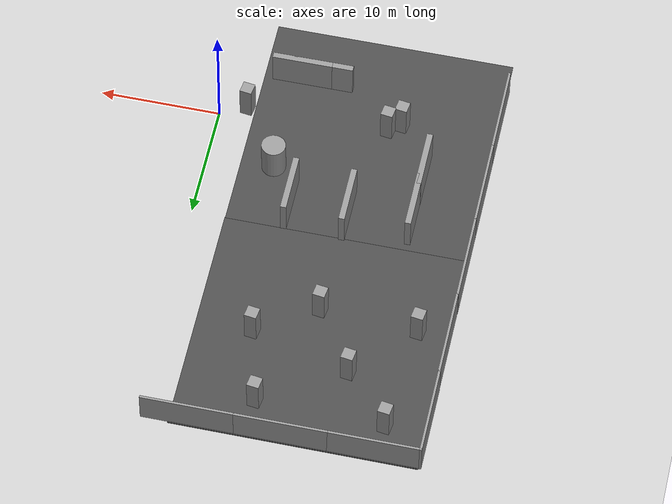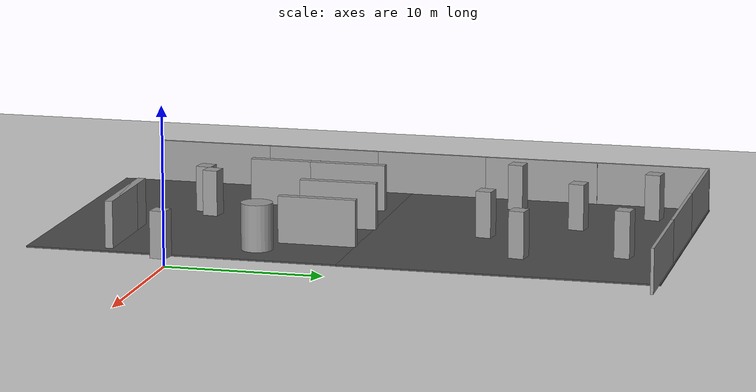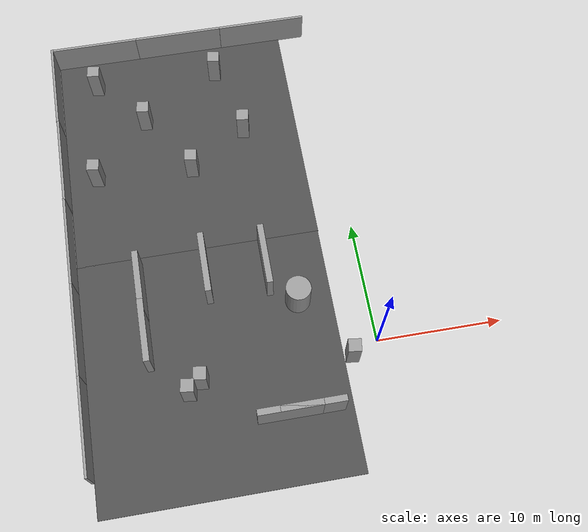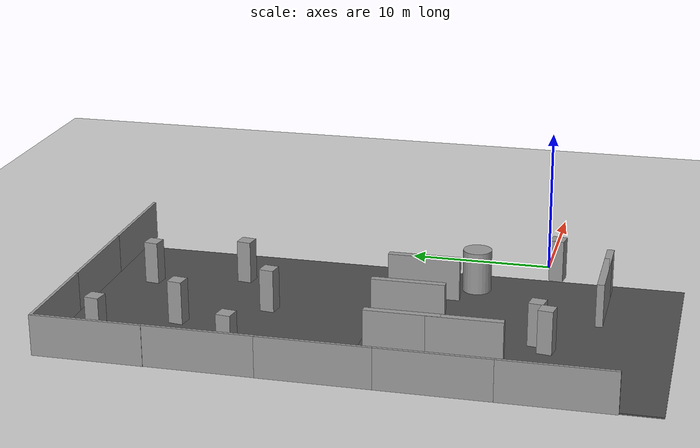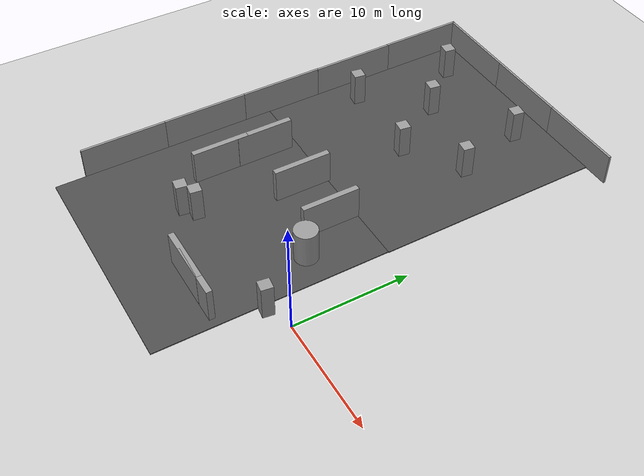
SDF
<sdf version="1.6">
 <world name="default">
  <model name="ground_plane">
   <static>1</static>
   <link name="link">
    <collision name="collision">
     <geometry><plane><normal>0 0 1</normal><size>100 100</size></plane></geometry>
     <surface>
      <contact><collide_bitmask>65535</collide_bitmask></contact>
      <friction><ode><mu>100</mu><mu2>50</mu2></ode></friction>
     </surface>
    </collision>
    <visual name="visual">
     <cast_shadows>0</cast_shadows>
     <geometry><plane><normal>0 0 1</normal><size>100 100</size></plane></geometry>
     <material>
      <script><uri>file://media/materials/scripts/gazebo.material</uri><name>Gazebo/Grey</name></script>
     </material>
    </visual>
   </link>
  </model>
  <model name="asphalt_plane_0">
   <static>1</static>
   <link name="link">
    <collision name="collision"><geometry><box><size>20 20 0.1</size></box></geometry></collision>
    <visual name="visual">
     <cast_shadows>0</cast_shadows>
     <geometry><box><size>20 20 0.1</size></box></geometry>
     <material>
      <script>
       <uri>model://asphalt_plane/materials/scripts</uri>
       <uri>model://asphalt_plane/materials/textures</uri>
       <name>vrc/asphalt</name>
      </script>
     </material>
    </visual>
   </link>
   <pose>-12.8115 0.130544 0 0 -0 0</pose>
  </model>
  <model name="asphalt_plane_0_clone_4">
   <static>1</static>
   <link name="asphalt_plane_0_clone_4::link">
    <collision name="collision"><geometry><box><size>20 20 0.1</size></box></geometry></collision>
    <visual name="visual">
     <cast_shadows>0</cast_shadows>
     <geometry><box><size>20 20 0.1</size></box></geometry>
     <material>
      <script>
       <uri>model://asphalt_plane/materials/scripts</uri>
       <uri>model://asphalt_plane/materials/textures</uri>
       <name>vrc/asphalt</name>
      </script>
     </material>
    </visual>
   </link>
   <pose>-12.7678 20.0846 0 0 -0 0</pose>
  </model>
  <model name="grey_wall">
   <static>1</static>
   <link name="link">
    <pose>0 0 1.4 0 -0 0</pose>
    <collision name="collision"><geometry><box><size>7.5 0.2 2.8</size></box></geometry></collision>
    <visual name="visual">
     <cast_shadows>0</cast_shadows>
     <geometry><box><size>7.5 0.2 2.8</size></box></geometry>
     <material>
      <script>
       <uri>model://grey_wall/materials/scripts</uri>
       <uri>model://grey_wall/materials/textures</uri>
       <name>vrc/grey_wall</name>
      </script>
     </material>
    </visual>
    <enable_wind>1</enable_wind>
   </link>
   <pose>-19.2347 29.9 0 0 -0 0</pose>
   <enable_wind>1</enable_wind>
  </model>
  <model name="grey_wall_clone">
   <static>1</static>
   <link name="link">
    <pose>0 0 1.4 0 -0 0</pose>
    <collision name="collision"><geometry><box><size>7.5 0.2 2.8</size></box></geometry></collision>
    <visual name="visual">
     <cast_shadows>0</cast_shadows>
     <geometry><box><size>7.5 0.2 2.8</size></box></geometry>
     <material>
      <script>
       <uri>model://grey_wall/materials/scripts</uri>
       <uri>model://grey_wall/materials/textures</uri>
       <name>vrc/grey_wall</name>
      </script>
     </material>
    </visual>
    <enable_wind>1</enable_wind>
   </link>
   <pose>-11.7883 29.9 0 0 -0 0</pose>
   <enable_wind>1</enable_wind>
  </model>
  <model name="grey_wall_clone_clone">
   <static>1</static>
   <link name="link">
    <pose>0 0 1.4 0 -0 0</pose>
    <collision name="collision"><geometry><box><size>7.5 0.2 2.8</size></box></geometry></collision>
    <visual name="visual">
     <cast_shadows>0</cast_shadows>
     <geometry><box><size>7.5 0.2 2.8</size></box></geometry>
     <material>
      <script>
       <uri>model://grey_wall/materials/scripts</uri>
       <uri>model://grey_wall/materials/textures</uri>
       <name>vrc/grey_wall</name>
      </script>
     </material>
    </visual>
    <enable_wind>1</enable_wind>
   </link>
   <pose>-4.30755 29.8961 0 0 -0 0</pose>
   <enable_wind>1</enable_wind>
  </model>
  <model name="grey_wall_clone_clone_3_clone_6">
   <static>1</static>
   <link name="link">
    <pose>0 0 1.4 0 -0 0</pose>
    <collision name="collision"><geometry><box><size>7.5 0.2 2.8</size></box></geometry></collision>
    <visual name="visual">
     <cast_shadows>0</cast_shadows>
     <geometry><box><size>7.5 0.2 2.8</size></box></geometry>
     <material>
      <script>
       <uri>model://grey_wall/materials/scripts</uri>
       <uri>model://grey_wall/materials/textures</uri>
       <name>vrc/grey_wall</name>
      </script>
     </material>
    </visual>
    <enable_wind>1</enable_wind>
   </link>
   <pose>-22.9 26.2649 0 0 -0 1.5707</pose>
   <enable_wind>1</enable_wind>
  </model>
  <model name="grey_wall_clone_clone_3_clone_6_clone">
   <static>1</static>
   <link name="link">
    <pose>0 0 1.4 0 -0 0</pose>
    <collision name="collision"><geometry><box><size>7.5 0.2 2.8</size></box></geometry></collision>
    <visual name="visual">
     <cast_shadows>0</cast_shadows>
     <geometry><box><size>7.5 0.2 2.8</size></box></geometry>
     <material>
      <script>
       <uri>model://grey_wall/materials/scripts</uri>
       <uri>model://grey_wall/materials/textures</uri>
       <name>vrc/grey_wall</name>
      </script>
     </material>
    </visual>
    <enable_wind>1</enable_wind>
   </link>
   <pose>-22.8768 18.8737 0 0 -0 1.5707</pose>
   <enable_wind>1</enable_wind>
  </model>
  <model name="grey_wall_clone_clone_3_clone_6_clone_0">
   <static>1</static>
   <link name="link">
    <pose>0 0 1.4 0 -0 0</pose>
    <collision name="collision"><geometry><box><size>7.5 0.2 2.8</size></box></geometry></collision>
    <visual name="visual">
     <cast_shadows>0</cast_shadows>
     <geometry><box><size>7.5 0.2 2.8</size></box></geometry>
     <material>
      <script>
       <uri>model://grey_wall/materials/scripts</uri>
       <uri>model://grey_wall/materials/textures</uri>
       <name>vrc/grey_wall</name>
      </script>
     </material>
    </visual>
    <enable_wind>1</enable_wind>
   </link>
   <pose>-22.9 11.4792 0 0 -0 1.5707</pose>
   <enable_wind>1</enable_wind>
  </model>
  <model name="grey_wall_clone_clone_3_clone_6_clone_1">
   <static>1</static>
   <link name="link">
    <pose>0 0 1.4 0 -0 0</pose>
    <collision name="collision"><geometry><box><size>7.5 0.2 2.8</size></box></geometry></collision>
    <visual name="visual">
     <cast_shadows>0</cast_shadows>
     <geometry><box><size>7.5 0.2 2.8</size></box></geometry>
     <material>
      <script>
       <uri>model://grey_wall/materials/scripts</uri>
       <uri>model://grey_wall/materials/textures</uri>
       <name>vrc/grey_wall</name>
      </script>
     </material>
    </visual>
    <enable_wind>1</enable_wind>
   </link>
   <pose>-22.9 4.04638 0 0 -0 1.5707</pose>
   <enable_wind>1</enable_wind>
  </model>
  <model name="grey_wall_clone_clone_3_clone_6_clone_2">
   <static>1</static>
   <link name="link">
    <pose>0 0 1.4 0 -0 0</pose>
    <collision name="collision"><geometry><box><size>7.5 0.2 2.8</size></box></geometry></collision>
    <visual name="visual">
     <cast_shadows>0</cast_shadows>
     <geometry><box><size>7.5 0.2 2.8</size></box></geometry>
     <material>
      <script>
       <uri>model://grey_wall/materials/scripts</uri>
       <uri>model://grey_wall/materials/textures</uri>
       <name>vrc/grey_wall</name>
      </script>
     </material>
    </visual>
    <enable_wind>1</enable_wind>
   </link>
   <pose>-22.9 -3.44017 0 0 -0 1.5707</pose>
   <enable_wind>1</enable_wind>
  </model>
  <model name="unit_box_1">
   <link name="link">
    <inertial>
     <mass>1</mass>
     <inertia>
      <ixx>0.166667</ixx>
      <ixy>0</ixy>
      <ixz>0</ixz>
      <iyy>0.166667</iyy>
      <iyz>0</iyz>
      <izz>0.166667</izz>
     </inertia>
    </inertial>
    <visual name="visual">
     <geometry><box><size>1 1 3</size></box></geometry>
     <material>
      <script><name>Gazebo/Grey</name><uri>file://media/materials/scripts/gazebo.material</uri></script>
      <shader type="pixel"><normal_map>__default__</normal_map></shader>
      <ambient>0.3 0.3 0.3 1</ambient>
      <diffuse>0.7 0.7 0.7 1</diffuse>
      <specular>0.01 0.01 0.01 1</specular>
      <emissive>0 0 0 1</emissive>
     </material>
    </visual>
    <collision name="collision">
     <geometry><box><size>1 1 3</size></box></geometry>
     <surface>
      <friction>
       <ode><mu>1</mu><mu2>1</mu2><fdir1>0 0 0</fdir1><slip1>0</slip1><slip2>0</slip2></ode>
       <torsional>
        <coefficient>1</coefficient>
        <patch_radius>0</patch_radius>
        <surface_radius>0</surface_radius>
        <use_patch_radius>1</use_patch_radius>
        <ode><slip>0</slip></ode>
       </torsional>
      </friction>
      <bounce><restitution_coefficient>0</restitution_coefficient><threshold>1e+06</threshold></bounce>
      <contact>
       <collide_without_contact>0</collide_without_contact>
       <collide_without_contact_bitmask>1</collide_without_contact_bitmask>
       <collide_bitmask>1</collide_bitmask>
       <ode>
        <soft_cfm>0</soft_cfm>
        <soft_erp>0.2</soft_erp>
        <kp>1e+13</kp>
        <kd>1</kd>
        <max_vel>0.01</max_vel>
        <min_depth>0</min_depth>
       </ode>
       <bullet>
        <split_impulse>1</split_impulse>
        <split_impulse_penetration_threshold>-0.01</split_impulse_penetration_threshold>
        <soft_cfm>0</soft_cfm>
        <soft_erp>0.2</soft_erp>
        <kp>1e+13</kp>
        <kd>1</kd>
       </bullet>
      </contact>
     </surface>
    </collision>
   </link>
   <static>1</static>
   <pose>-9.0508 26.7938 1.52567 0 0 -0.143769</pose>
  </model>
  <model name="unit_box_1_clone">
   <link name="link">
    <inertial>
     <mass>1</mass>
     <inertia>
      <ixx>0.166667</ixx>
      <ixy>0</ixy>
      <ixz>0</ixz>
      <iyy>0.166667</iyy>
      <iyz>0</iyz>
      <izz>0.166667</izz>
     </inertia>
    </inertial>
    <visual name="visual">
     <geometry><box><size>1 1 3</size></box></geometry>
     <material>
      <script><name>Gazebo/Grey</name><uri>file://media/materials/scripts/gazebo.material</uri></script>
      <shader type="pixel"><normal_map>__default__</normal_map></shader>
      <ambient>0.3 0.3 0.3 1</ambient>
      <diffuse>0.7 0.7 0.7 1</diffuse>
      <specular>0.01 0.01 0.01 1</specular>
      <emissive>0 0 0 1</emissive>
     </material>
    </visual>
    <collision name="collision">
     <geometry><box><size>1 1 3</size></box></geometry>
     <surface>
      <friction>
       <ode><mu>1</mu><mu2>1</mu2><fdir1>0 0 0</fdir1><slip1>0</slip1><slip2>0</slip2></ode>
       <torsional>
        <coefficient>1</coefficient>
        <patch_radius>0</patch_radius>
        <surface_radius>0</surface_radius>
        <use_patch_radius>1</use_patch_radius>
        <ode><slip>0</slip></ode>
       </torsional>
      </friction>
      <bounce><restitution_coefficient>0</restitution_coefficient><threshold>1e+06</threshold></bounce>
      <contact>
       <collide_without_contact>0</collide_without_contact>
       <collide_without_contact_bitmask>1</collide_without_contact_bitmask>
       <collide_bitmask>1</collide_bitmask>
       <ode>
        <soft_cfm>0</soft_cfm>
        <soft_erp>0.2</soft_erp>
        <kp>1e+13</kp>
        <kd>1</kd>
        <max_vel>0.01</max_vel>
        <min_depth>0</min_depth>
       </ode>
       <bullet>
        <split_impulse>1</split_impulse>
        <split_impulse_penetration_threshold>-0.01</split_impulse_penetration_threshold>
        <soft_cfm>0</soft_cfm>
        <soft_erp>0.2</soft_erp>
        <kp>1e+13</kp>
        <kd>1</kd>
       </bullet>
      </contact>
     </surface>
    </collision>
   </link>
   <static>1</static>
   <pose>-7.42634 20.4948 1.52567 0 0 -0.143769</pose>
  </model>
  <model name="unit_box_1_clone_0">
   <link name="link">
    <inertial>
     <mass>1</mass>
     <inertia>
      <ixx>0.166667</ixx>
      <ixy>0</ixy>
      <ixz>0</ixz>
      <iyy>0.166667</iyy>
      <iyz>0</iyz>
      <izz>0.166667</izz>
     </inertia>
    </inertial>
    <visual name="visual">
     <geometry><box><size>1 1 3</size></box></geometry>
     <material>
      <script><name>Gazebo/Grey</name><uri>file://media/materials/scripts/gazebo.material</uri></script>
      <shader type="pixel"><normal_map>__default__</normal_map></shader>
      <ambient>0.3 0.3 0.3 1</ambient>
      <diffuse>0.7 0.7 0.7 1</diffuse>
      <specular>0.01 0.01 0.01 1</specular>
      <emissive>0 0 0 1</emissive>
     </material>
    </visual>
    <collision name="collision">
     <geometry><box><size>1 1 3</size></box></geometry>
     <surface>
      <friction>
       <ode><mu>1</mu><mu2>1</mu2><fdir1>0 0 0</fdir1><slip1>0</slip1><slip2>0</slip2></ode>
       <torsional>
        <coefficient>1</coefficient>
        <patch_radius>0</patch_radius>
        <surface_radius>0</surface_radius>
        <use_patch_radius>1</use_patch_radius>
        <ode><slip>0</slip></ode>
       </torsional>
      </friction>
      <bounce><restitution_coefficient>0</restitution_coefficient><threshold>1e+06</threshold></bounce>
      <contact>
       <collide_without_contact>0</collide_without_contact>
       <collide_without_contact_bitmask>1</collide_without_contact_bitmask>
       <collide_bitmask>1</collide_bitmask>
       <ode>
        <soft_cfm>0</soft_cfm>
        <soft_erp>0.2</soft_erp>
        <kp>1e+13</kp>
        <kd>1</kd>
        <max_vel>0.01</max_vel>
        <min_depth>0</min_depth>
       </ode>
       <bullet>
        <split_impulse>1</split_impulse>
        <split_impulse_penetration_threshold>-0.01</split_impulse_penetration_threshold>
        <soft_cfm>0</soft_cfm>
        <soft_erp>0.2</soft_erp>
        <kp>1e+13</kp>
        <kd>1</kd>
       </bullet>
      </contact>
     </surface>
    </collision>
   </link>
   <static>1</static>
   <pose>-12.2663 17.3946 1.52567 0 0 -0.143769</pose>
  </model>
  <model name="unit_box_1_clone_1">
   <link name="link">
    <inertial>
     <mass>1</mass>
     <inertia>
      <ixx>0.166667</ixx>
      <ixy>0</ixy>
      <ixz>0</ixz>
      <iyy>0.166667</iyy>
      <iyz>0</iyz>
      <izz>0.166667</izz>
     </inertia>
    </inertial>
    <visual name="visual">
     <geometry><box><size>1 1 3</size></box></geometry>
     <material>
      <script><name>Gazebo/Grey</name><uri>file://media/materials/scripts/gazebo.material</uri></script>
      <shader type="pixel"><normal_map>__default__</normal_map></shader>
      <ambient>0.3 0.3 0.3 1</ambient>
      <diffuse>0.7 0.7 0.7 1</diffuse>
      <specular>0.01 0.01 0.01 1</specular>
      <emissive>0 0 0 1</emissive>
     </material>
    </visual>
    <collision name="collision">
     <geometry><box><size>1 1 3</size></box></geometry>
     <surface>
      <friction>
       <ode><mu>1</mu><mu2>1</mu2><fdir1>0 0 0</fdir1><slip1>0</slip1><slip2>0</slip2></ode>
       <torsional>
        <coefficient>1</coefficient>
        <patch_radius>0</patch_radius>
        <surface_radius>0</surface_radius>
        <use_patch_radius>1</use_patch_radius>
        <ode><slip>0</slip></ode>
       </torsional>
      </friction>
      <bounce><restitution_coefficient>0</restitution_coefficient><threshold>1e+06</threshold></bounce>
      <contact>
       <collide_without_contact>0</collide_without_contact>
       <collide_without_contact_bitmask>1</collide_without_contact_bitmask>
       <collide_bitmask>1</collide_bitmask>
       <ode>
        <soft_cfm>0</soft_cfm>
        <soft_erp>0.2</soft_erp>
        <kp>1e+13</kp>
        <kd>1</kd>
        <max_vel>0.01</max_vel>
        <min_depth>0</min_depth>
       </ode>
       <bullet>
        <split_impulse>1</split_impulse>
        <split_impulse_penetration_threshold>-0.01</split_impulse_penetration_threshold>
        <soft_cfm>0</soft_cfm>
        <soft_erp>0.2</soft_erp>
        <kp>1e+13</kp>
        <kd>1</kd>
       </bullet>
      </contact>
     </surface>
    </collision>
   </link>
   <static>1</static>
   <pose>-15.6627 22.7025 1.52567 0 0 -0.143769</pose>
  </model>
  <model name="unit_box_1_clone_2">
   <link name="link">
    <inertial>
     <mass>1</mass>
     <inertia>
      <ixx>0.166667</ixx>
      <ixy>0</ixy>
      <ixz>0</ixz>
      <iyy>0.166667</iyy>
      <iyz>0</iyz>
      <izz>0.166667</izz>
     </inertia>
    </inertial>
    <visual name="visual">
     <geometry><box><size>1 1 3</size></box></geometry>
     <material>
      <script><name>Gazebo/Grey</name><uri>file://media/materials/scripts/gazebo.material</uri></script>
      <shader type="pixel"><normal_map>__default__</normal_map></shader>
      <ambient>0.3 0.3 0.3 1</ambient>
      <diffuse>0.7 0.7 0.7 1</diffuse>
      <specular>0.01 0.01 0.01 1</specular>
      <emissive>0 0 0 1</emissive>
     </material>
    </visual>
    <collision name="collision">
     <geometry><box><size>1 1 3</size></box></geometry>
     <surface>
      <friction>
       <ode><mu>1</mu><mu2>1</mu2><fdir1>0 0 0</fdir1><slip1>0</slip1><slip2>0</slip2></ode>
       <torsional>
        <coefficient>1</coefficient>
        <patch_radius>0</patch_radius>
        <surface_radius>0</surface_radius>
        <use_patch_radius>1</use_patch_radius>
        <ode><slip>0</slip></ode>
       </torsional>
      </friction>
      <bounce><restitution_coefficient>0</restitution_coefficient><threshold>1e+06</threshold></bounce>
      <contact>
       <collide_without_contact>0</collide_without_contact>
       <collide_without_contact_bitmask>1</collide_without_contact_bitmask>
       <collide_bitmask>1</collide_bitmask>
       <ode>
        <soft_cfm>0</soft_cfm>
        <soft_erp>0.2</soft_erp>
        <kp>1e+13</kp>
        <kd>1</kd>
        <max_vel>0.01</max_vel>
        <min_depth>0</min_depth>
       </ode>
       <bullet>
        <split_impulse>1</split_impulse>
        <split_impulse_penetration_threshold>-0.01</split_impulse_penetration_threshold>
        <soft_cfm>0</soft_cfm>
        <soft_erp>0.2</soft_erp>
        <kp>1e+13</kp>
        <kd>1</kd>
       </bullet>
      </contact>
     </surface>
    </collision>
   </link>
   <static>1</static>
   <pose>-19.4954 26.9637 1.52567 0 0 -0.143769</pose>
  </model>
  <model name="unit_box_1_clone_3">
   <link name="link">
    <inertial>
     <mass>1</mass>
     <inertia>
      <ixx>0.166667</ixx>
      <ixy>0</ixy>
      <ixz>0</ixz>
      <iyy>0.166667</iyy>
      <iyz>0</iyz>
      <izz>0.166667</izz>
     </inertia>
    </inertial>
    <visual name="visual">
     <geometry><box><size>1 1 3</size></box></geometry>
     <material>
      <script><name>Gazebo/Grey</name><uri>file://media/materials/scripts/gazebo.material</uri></script>
      <shader type="pixel"><normal_map>__default__</normal_map></shader>
      <ambient>0.3 0.3 0.3 1</ambient>
      <diffuse>0.7 0.7 0.7 1</diffuse>
      <specular>0.01 0.01 0.01 1</specular>
      <emissive>0 0 0 1</emissive>
     </material>
    </visual>
    <collision name="collision">
     <geometry><box><size>1 1 3</size></box></geometry>
     <surface>
      <friction>
       <ode><mu>1</mu><mu2>1</mu2><fdir1>0 0 0</fdir1><slip1>0</slip1><slip2>0</slip2></ode>
       <torsional>
        <coefficient>1</coefficient>
        <patch_radius>0</patch_radius>
        <surface_radius>0</surface_radius>
        <use_patch_radius>1</use_patch_radius>
        <ode><slip>0</slip></ode>
       </torsional>
      </friction>
      <bounce><restitution_coefficient>0</restitution_coefficient><threshold>1e+06</threshold></bounce>
      <contact>
       <collide_without_contact>0</collide_without_contact>
       <collide_without_contact_bitmask>1</collide_without_contact_bitmask>
       <collide_bitmask>1</collide_bitmask>
       <ode>
        <soft_cfm>0</soft_cfm>
        <soft_erp>0.2</soft_erp>
        <kp>1e+13</kp>
        <kd>1</kd>
        <max_vel>0.01</max_vel>
        <min_depth>0</min_depth>
       </ode>
       <bullet>
        <split_impulse>1</split_impulse>
        <split_impulse_penetration_threshold>-0.01</split_impulse_penetration_threshold>
        <soft_cfm>0</soft_cfm>
        <soft_erp>0.2</soft_erp>
        <kp>1e+13</kp>
        <kd>1</kd>
       </bullet>
      </contact>
     </surface>
    </collision>
   </link>
   <static>1</static>
   <pose>-20.2965 17.8172 1.52567 0 0 -0.143769</pose>
  </model>
  <model name="unit_box_clone_clone_7">
   <link name="link">
    <inertial>
     <mass>1</mass>
     <inertia>
      <ixx>0.166667</ixx>
      <ixy>0</ixy>
      <ixz>0</ixz>
      <iyy>0.166667</iyy>
      <iyz>0</iyz>
      <izz>0.166667</izz>
     </inertia>
    </inertial>
    <visual name="visual">
     <geometry><box><size>0.5 5 3</size></box></geometry>
     <material>
      <script><name>Gazebo/Grey</name><uri>file://media/materials/scripts/gazebo.material</uri></script>
      <shader type="pixel"><normal_map>__default__</normal_map></shader>
      <ambient>0.3 0.3 0.3 1</ambient>
      <diffuse>0.7 0.7 0.7 1</diffuse>
      <specular>0.01 0.01 0.01 1</specular>
      <emissive>0 0 0 1</emissive>
     </material>
    </visual>
    <collision name="collision">
     <geometry><box><size>1 5 3</size></box></geometry>
     <surface>
      <friction>
       <ode><mu>1</mu><mu2>1</mu2><fdir1>0 0 0</fdir1><slip1>0</slip1><slip2>0</slip2></ode>
       <torsional>
        <coefficient>1</coefficient>
        <patch_radius>0</patch_radius>
        <surface_radius>0</surface_radius>
        <use_patch_radius>1</use_patch_radius>
        <ode><slip>0</slip></ode>
       </torsional>
      </friction>
      <bounce><restitution_coefficient>0</restitution_coefficient><threshold>1e+06</threshold></bounce>
      <contact>
       <collide_without_contact>0</collide_without_contact>
       <collide_without_contact_bitmask>1</collide_without_contact_bitmask>
       <collide_bitmask>1</collide_bitmask>
       <ode>
        <soft_cfm>0</soft_cfm>
        <soft_erp>0.2</soft_erp>
        <kp>1e+13</kp>
        <kd>1</kd>
        <max_vel>0.01</max_vel>
        <min_depth>0</min_depth>
       </ode>
       <bullet>
        <split_impulse>1</split_impulse>
        <split_impulse_penetration_threshold>-0.01</split_impulse_penetration_threshold>
        <soft_cfm>0</soft_cfm>
        <soft_erp>0.2</soft_erp>
        <kp>1e+13</kp>
        <kd>1</kd>
       </bullet>
      </contact>
     </surface>
    </collision>
   </link>
   <static>1</static>
   <pose>-7.62634 7.64872 1.54724 0 -0 6.7e-05</pose>
  </model>
  <model name="unit_box_clone_clone_0">
   <link name="link">
    <inertial>
     <mass>1</mass>
     <inertia>
      <ixx>0.166667</ixx>
      <ixy>0</ixy>
      <ixz>0</ixz>
      <iyy>0.166667</iyy>
      <iyz>0</iyz>
      <izz>0.166667</izz>
     </inertia>
    </inertial>
    <visual name="visual">
     <geometry><box><size>0.5 5 3</size></box></geometry>
     <material>
      <script><name>Gazebo/Grey</name><uri>file://media/materials/scripts/gazebo.material</uri></script>
      <shader type="pixel"><normal_map>__default__</normal_map></shader>
      <ambient>0.3 0.3 0.3 1</ambient>
      <diffuse>0.7 0.7 0.7 1</diffuse>
      <specular>0.01 0.01 0.01 1</specular>
      <emissive>0 0 0 1</emissive>
     </material>
    </visual>
    <collision name="collision">
     <geometry><box><size>1 5 3</size></box></geometry>
     <surface>
      <friction>
       <ode><mu>1</mu><mu2>1</mu2><fdir1>0 0 0</fdir1><slip1>0</slip1><slip2>0</slip2></ode>
       <torsional>
        <coefficient>1</coefficient>
        <patch_radius>0</patch_radius>
        <surface_radius>0</surface_radius>
        <use_patch_radius>1</use_patch_radius>
        <ode><slip>0</slip></ode>
       </torsional>
      </friction>
      <bounce><restitution_coefficient>0</restitution_coefficient><threshold>1e+06</threshold></bounce>
      <contact>
       <collide_without_contact>0</collide_without_contact>
       <collide_without_contact_bitmask>1</collide_without_contact_bitmask>
       <collide_bitmask>1</collide_bitmask>
       <ode>
        <soft_cfm>0</soft_cfm>
        <soft_erp>0.2</soft_erp>
        <kp>1e+13</kp>
        <kd>1</kd>
        <max_vel>0.01</max_vel>
        <min_depth>0</min_depth>
       </ode>
       <bullet>
        <split_impulse>1</split_impulse>
        <split_impulse_penetration_threshold>-0.01</split_impulse_penetration_threshold>
        <soft_cfm>0</soft_cfm>
        <soft_erp>0.2</soft_erp>
        <kp>1e+13</kp>
        <kd>1</kd>
       </bullet>
      </contact>
     </surface>
    </collision>
   </link>
   <static>1</static>
   <pose>-12.4422 7.75276 1.54724 0 -0 6.7e-05</pose>
  </model>
  <model name="unit_box_clone_clone_4">
   <link name="link">
    <inertial>
     <mass>1</mass>
     <inertia>
      <ixx>0.166667</ixx>
      <ixy>0</ixy>
      <ixz>0</ixz>
      <iyy>0.166667</iyy>
      <iyz>0</iyz>
      <izz>0.166667</izz>
     </inertia>
    </inertial>
    <visual name="visual">
     <geometry><box><size>0.5 5 3</size></box></geometry>
     <material>
      <script><name>Gazebo/Grey</name><uri>file://media/materials/scripts/gazebo.material</uri></script>
      <shader type="pixel"><normal_map>__default__</normal_map></shader>
      <ambient>0.3 0.3 0.3 1</ambient>
      <diffuse>0.7 0.7 0.7 1</diffuse>
      <specular>0.01 0.01 0.01 1</specular>
      <emissive>0 0 0 1</emissive>
     </material>
    </visual>
    <collision name="collision">
     <geometry><box><size>1 5 3</size></box></geometry>
     <surface>
      <friction>
       <ode><mu>1</mu><mu2>1</mu2><fdir1>0 0 0</fdir1><slip1>0</slip1><slip2>0</slip2></ode>
       <torsional>
        <coefficient>1</coefficient>
        <patch_radius>0</patch_radius>
        <surface_radius>0</surface_radius>
        <use_patch_radius>1</use_patch_radius>
        <ode><slip>0</slip></ode>
       </torsional>
      </friction>
      <bounce><restitution_coefficient>0</restitution_coefficient><threshold>1e+06</threshold></bounce>
      <contact>
       <collide_without_contact>0</collide_without_contact>
       <collide_without_contact_bitmask>1</collide_without_contact_bitmask>
       <collide_bitmask>1</collide_bitmask>
       <ode>
        <soft_cfm>0</soft_cfm>
        <soft_erp>0.2</soft_erp>
        <kp>1e+13</kp>
        <kd>1</kd>
        <max_vel>0.01</max_vel>
        <min_depth>0</min_depth>
       </ode>
       <bullet>
        <split_impulse>1</split_impulse>
        <split_impulse_penetration_threshold>-0.01</split_impulse_penetration_threshold>
        <soft_cfm>0</soft_cfm>
        <soft_erp>0.2</soft_erp>
        <kp>1e+13</kp>
        <kd>1</kd>
       </bullet>
      </contact>
     </surface>
    </collision>
   </link>
   <static>1</static>
   <pose>-17.7452 3.00531 1.54724 0 -0 6.7e-05</pose>
  </model>
  <model name="unit_box_clone_clone_5">
   <link name="link">
    <inertial>
     <mass>1</mass>
     <inertia>
      <ixx>0.166667</ixx>
      <ixy>0</ixy>
      <ixz>0</ixz>
      <iyy>0.166667</iyy>
      <iyz>0</iyz>
      <izz>0.166667</izz>
     </inertia>
    </inertial>
    <visual name="visual">
     <geometry><box><size>0.5 5 3</size></box></geometry>
     <material>
      <script><name>Gazebo/Grey</name><uri>file://media/materials/scripts/gazebo.material</uri></script>
      <shader type="pixel"><normal_map>__default__</normal_map></shader>
      <ambient>0.3 0.3 0.3 1</ambient>
      <diffuse>0.7 0.7 0.7 1</diffuse>
      <specular>0.01 0.01 0.01 1</specular>
      <emissive>0 0 0 1</emissive>
     </material>
    </visual>
    <collision name="collision">
     <geometry><box><size>1 5 3</size></box></geometry>
     <surface>
      <friction>
       <ode><mu>1</mu><mu2>1</mu2><fdir1>0 0 0</fdir1><slip1>0</slip1><slip2>0</slip2></ode>
       <torsional>
        <coefficient>1</coefficient>
        <patch_radius>0</patch_radius>
        <surface_radius>0</surface_radius>
        <use_patch_radius>1</use_patch_radius>
        <ode><slip>0</slip></ode>
       </torsional>
      </friction>
      <bounce><restitution_coefficient>0</restitution_coefficient><threshold>1e+06</threshold></bounce>
      <contact>
       <collide_without_contact>0</collide_without_contact>
       <collide_without_contact_bitmask>1</collide_without_contact_bitmask>
       <collide_bitmask>1</collide_bitmask>
       <ode>
        <soft_cfm>0</soft_cfm>
        <soft_erp>0.2</soft_erp>
        <kp>1e+13</kp>
        <kd>1</kd>
        <max_vel>0.01</max_vel>
        <min_depth>0</min_depth>
       </ode>
       <bullet>
        <split_impulse>1</split_impulse>
        <split_impulse_penetration_threshold>-0.01</split_impulse_penetration_threshold>
        <soft_cfm>0</soft_cfm>
        <soft_erp>0.2</soft_erp>
        <kp>1e+13</kp>
        <kd>1</kd>
       </bullet>
      </contact>
     </surface>
    </collision>
   </link>
   <static>1</static>
   <pose>-17.7284 7.04395 1.54724 0 -0 6.7e-05</pose>
  </model>
  <model name="unit_cylinder_01_clone_3_clone_0_clone">
   <link name="link">
    <inertial>
     <mass>1</mass>
     <inertia><ixx>0.145833</ixx><ixy>0</ixy><ixz>0</ixz><iyy>0.145833</iyy><iyz>0</iyz><izz>0.125</izz></inertia>
    </inertial>
    <visual name="visual">
     <geometry><cylinder><radius>1</radius><length>3</length></cylinder></geometry>
     <material>
      <script><name>Gazebo/Grey</name><uri>file://media/materials/scripts/gazebo.material</uri></script>
      <shader type="pixel"><normal_map>__default__</normal_map></shader>
      <ambient>0.3 0.3 0.3 1</ambient>
      <diffuse>0.7 0.7 0.7 1</diffuse>
      <specular>0.01 0.01 0.01 1</specular>
      <emissive>0 0 0 1</emissive>
     </material>
    </visual>
    <collision name="collision">
     <geometry><cylinder><radius>1</radius><length>3</length></cylinder></geometry>
     <surface>
      <friction>
       <ode><mu>1</mu><mu2>1</mu2><fdir1>0 0 0</fdir1><slip1>0</slip1><slip2>0</slip2></ode>
       <torsional>
        <coefficient>1</coefficient>
        <patch_radius>0</patch_radius>
        <surface_radius>0</surface_radius>
        <use_patch_radius>1</use_patch_radius>
        <ode><slip>0</slip></ode>
       </torsional>
      </friction>
      <bounce><restitution_coefficient>0</restitution_coefficient><threshold>1e+06</threshold></bounce>
      <contact>
       <collide_without_contact>0</collide_without_contact>
       <collide_without_contact_bitmask>1</collide_without_contact_bitmask>
       <collide_bitmask>1</collide_bitmask>
       <ode>
        <soft_cfm>0</soft_cfm>
        <soft_erp>0.2</soft_erp>
        <kp>1e+13</kp>
        <kd>1</kd>
        <max_vel>0.01</max_vel>
        <min_depth>0</min_depth>
       </ode>
       <bullet>
        <split_impulse>1</split_impulse>
        <split_impulse_penetration_threshold>-0.01</split_impulse_penetration_threshold>
        <soft_cfm>0</soft_cfm>
        <soft_erp>0.2</soft_erp>
        <kp>1e+13</kp>
        <kd>1</kd>
       </bullet>
      </contact>
     </surface>
    </collision>
   </link>
   <static>1</static>
   <pose>-5.54525 4.31465 1.52285 1e-06 2e-06 4e-06</pose>
  </model>
  <model name="unit_box_1_clone_0_clone">
   <link name="link">
    <inertial>
     <mass>1</mass>
     <inertia>
      <ixx>0.166667</ixx>
      <ixy>0</ixy>
      <ixz>0</ixz>
      <iyy>0.166667</iyy>
      <iyz>0</iyz>
      <izz>0.166667</izz>
     </inertia>
    </inertial>
    <visual name="visual">
     <geometry><box><size>1 1 3</size></box></geometry>
     <material>
      <script><name>Gazebo/Grey</name><uri>file://media/materials/scripts/gazebo.material</uri></script>
      <shader type="pixel"><normal_map>__default__</normal_map></shader>
      <ambient>0.3 0.3 0.3 1</ambient>
      <diffuse>0.7 0.7 0.7 1</diffuse>
      <specular>0.01 0.01 0.01 1</specular>
      <emissive>0 0 0 1</emissive>
     </material>
    </visual>
    <collision name="collision">
     <geometry><box><size>1 1 3</size></box></geometry>
     <surface>
      <friction>
       <ode><mu>1</mu><mu2>1</mu2><fdir1>0 0 0</fdir1><slip1>0</slip1><slip2>0</slip2></ode>
       <torsional>
        <coefficient>1</coefficient>
        <patch_radius>0</patch_radius>
        <surface_radius>0</surface_radius>
        <use_patch_radius>1</use_patch_radius>
        <ode><slip>0</slip></ode>
       </torsional>
      </friction>
      <bounce><restitution_coefficient>0</restitution_coefficient><threshold>1e+06</threshold></bounce>
      <contact>
       <collide_without_contact>0</collide_without_contact>
       <collide_without_contact_bitmask>1</collide_without_contact_bitmask>
       <collide_bitmask>1</collide_bitmask>
       <ode>
        <soft_cfm>0</soft_cfm>
        <soft_erp>0.2</soft_erp>
        <kp>1e+13</kp>
        <kd>1</kd>
        <max_vel>0.01</max_vel>
        <min_depth>0</min_depth>
       </ode>
       <bullet>
        <split_impulse>1</split_impulse>
        <split_impulse_penetration_threshold>-0.01</split_impulse_penetration_threshold>
        <soft_cfm>0</soft_cfm>
        <soft_erp>0.2</soft_erp>
        <kp>1e+13</kp>
        <kd>1</kd>
       </bullet>
      </contact>
     </surface>
    </collision>
   </link>
   <static>1</static>
   <pose>-2.19111 -0.894538 1.52567 0 0 -0.143769</pose>
  </model>
  <model name="unit_box_x_horiz_clone_0_clone_clone">
   <link name="link">
    <inertial>
     <mass>1</mass>
     <inertia>
      <ixx>0.166667</ixx>
      <ixy>0</ixy>
      <ixz>0</ixz>
      <iyy>0.166667</iyy>
      <iyz>0</iyz>
      <izz>0.166667</izz>
     </inertia>
    </inertial>
    <visual name="visual">
     <geometry><box><size>5 0.5 3</size></box></geometry>
     <material>
      <script><name>Gazebo/Grey</name><uri>file://media/materials/scripts/gazebo.material</uri></script>
      <shader type="pixel"><normal_map>__default__</normal_map></shader>
      <ambient>0.3 0.3 0.3 1</ambient>
      <diffuse>0.7 0.7 0.7 1</diffuse>
      <specular>0.01 0.01 0.01 1</specular>
      <emissive>0 0 0 1</emissive>
     </material>
    </visual>
    <collision name="collision">
     <geometry><box><size>5 1 3</size></box></geometry>
     <surface>
      <friction>
       <ode><mu>1</mu><mu2>1</mu2><fdir1>0 0 0</fdir1><slip1>0</slip1><slip2>0</slip2></ode>
       <torsional>
        <coefficient>1</coefficient>
        <patch_radius>0</patch_radius>
        <surface_radius>0</surface_radius>
        <use_patch_radius>1</use_patch_radius>
        <ode><slip>0</slip></ode>
       </torsional>
      </friction>
      <bounce><restitution_coefficient>0</restitution_coefficient><threshold>1e+06</threshold></bounce>
      <contact>
       <collide_without_contact>0</collide_without_contact>
       <collide_without_contact_bitmask>1</collide_without_contact_bitmask>
       <collide_bitmask>1</collide_bitmask>
       <ode>
        <soft_cfm>0</soft_cfm>
        <soft_erp>0.2</soft_erp>
        <kp>1e+13</kp>
        <kd>1</kd>
        <max_vel>0.01</max_vel>
        <min_depth>0</min_depth>
       </ode>
       <bullet>
        <split_impulse>1</split_impulse>
        <split_impulse_penetration_threshold>-0.01</split_impulse_penetration_threshold>
        <soft_cfm>0</soft_cfm>
        <soft_erp>0.2</soft_erp>
        <kp>1e+13</kp>
        <kd>1</kd>
       </bullet>
      </contact>
     </surface>
    </collision>
   </link>
   <static>1</static>
   <pose>-6.01903 -4.67751 1.54702 0 -0 6.7e-05</pose>
  </model>
  <model name="unit_box_x_horiz_clone_0_clone_clone_0">
   <link name="link">
    <inertial>
     <mass>1</mass>
     <inertia>
      <ixx>0.166667</ixx>
      <ixy>0</ixy>
      <ixz>0</ixz>
      <iyy>0.166667</iyy>
      <iyz>0</iyz>
      <izz>0.166667</izz>
     </inertia>
    </inertial>
    <visual name="visual">
     <geometry><box><size>5 0.5 3</size></box></geometry>
     <material>
      <script><name>Gazebo/Grey</name><uri>file://media/materials/scripts/gazebo.material</uri></script>
      <shader type="pixel"><normal_map>__default__</normal_map></shader>
      <ambient>0.3 0.3 0.3 1</ambient>
      <diffuse>0.7 0.7 0.7 1</diffuse>
      <specular>0.01 0.01 0.01 1</specular>
      <emissive>0 0 0 1</emissive>
     </material>
    </visual>
    <collision name="collision">
     <geometry><box><size>5 1 3</size></box></geometry>
     <surface>
      <friction>
       <ode><mu>1</mu><mu2>1</mu2><fdir1>0 0 0</fdir1><slip1>0</slip1><slip2>0</slip2></ode>
       <torsional>
        <coefficient>1</coefficient>
        <patch_radius>0</patch_radius>
        <surface_radius>0</surface_radius>
        <use_patch_radius>1</use_patch_radius>
        <ode><slip>0</slip></ode>
       </torsional>
      </friction>
      <bounce><restitution_coefficient>0</restitution_coefficient><threshold>1e+06</threshold></bounce>
      <contact>
       <collide_without_contact>0</collide_without_contact>
       <collide_without_contact_bitmask>1</collide_without_contact_bitmask>
       <collide_bitmask>1</collide_bitmask>
       <ode>
        <soft_cfm>0</soft_cfm>
        <soft_erp>0.2</soft_erp>
        <kp>1e+13</kp>
        <kd>1</kd>
        <max_vel>0.01</max_vel>
        <min_depth>0</min_depth>
       </ode>
       <bullet>
        <split_impulse>1</split_impulse>
        <split_impulse_penetration_threshold>-0.01</split_impulse_penetration_threshold>
        <soft_cfm>0</soft_cfm>
        <soft_erp>0.2</soft_erp>
        <kp>1e+13</kp>
        <kd>1</kd>
       </bullet>
      </contact>
     </surface>
    </collision>
   </link>
   <static>1</static>
   <pose>-7.7648 -4.68067 1.54702 0 -0 6.7e-05</pose>
  </model>
  <model name="unit_box_1_clone_0_clone_2_clone_7_clone_clone">
   <link name="link">
    <inertial>
     <mass>1</mass>
     <inertia>
      <ixx>0.166667</ixx>
      <ixy>0</ixy>
      <ixz>0</ixz>
      <iyy>0.166667</iyy>
      <iyz>0</iyz>
      <izz>0.166667</izz>
     </inertia>
    </inertial>
    <visual name="visual">
     <geometry><box><size>1 1 3</size></box></geometry>
     <material>
      <script><name>Gazebo/Grey</name><uri>file://media/materials/scripts/gazebo.material</uri></script>
      <shader type="pixel"><normal_map>__default__</normal_map></shader>
      <ambient>0.3 0.3 0.3 1</ambient>
      <diffuse>0.7 0.7 0.7 1</diffuse>
      <specular>0.01 0.01 0.01 1</specular>
      <emissive>0 0 0 1</emissive>
     </material>
    </visual>
    <collision name="collision">
     <geometry><box><size>1 1 3</size></box></geometry>
     <surface>
      <friction>
       <ode><mu>1</mu><mu2>1</mu2><fdir1>0 0 0</fdir1><slip1>0</slip1><slip2>0</slip2></ode>
       <torsional>
        <coefficient>1</coefficient>
        <patch_radius>0</patch_radius>
        <surface_radius>0</surface_radius>
        <use_patch_radius>1</use_patch_radius>
        <ode><slip>0</slip></ode>
       </torsional>
      </friction>
      <bounce><restitution_coefficient>0</restitution_coefficient><threshold>1e+06</threshold></bounce>
      <contact>
       <collide_without_contact>0</collide_without_contact>
       <collide_without_contact_bitmask>1</collide_without_contact_bitmask>
       <collide_bitmask>1</collide_bitmask>
       <ode>
        <soft_cfm>0</soft_cfm>
        <soft_erp>0.2</soft_erp>
        <kp>1e+13</kp>
        <kd>1</kd>
        <max_vel>0.01</max_vel>
        <min_depth>0</min_depth>
       </ode>
       <bullet>
        <split_impulse>1</split_impulse>
        <split_impulse_penetration_threshold>-0.01</split_impulse_penetration_threshold>
        <soft_cfm>0</soft_cfm>
        <soft_erp>0.2</soft_erp>
        <kp>1e+13</kp>
        <kd>1</kd>
       </bullet>
      </contact>
     </surface>
    </collision>
   </link>
   <static>1</static>
   <pose>-13.9596 -1.05306 1.52567 0 0 -0.143769</pose>
  </model>
  <model name="unit_box_1_clone_0_clone_2_clone_7_clone_clone_0">
   <link name="link">
    <inertial>
     <mass>1</mass>
     <inertia>
      <ixx>0.166667</ixx>
      <ixy>0</ixy>
      <ixz>0</ixz>
      <iyy>0.166667</iyy>
      <iyz>0</iyz>
      <izz>0.166667</izz>
     </inertia>
    </inertial>
    <visual name="visual">
     <geometry><box><size>1 1 3</size></box></geometry>
     <material>
      <script><name>Gazebo/Grey</name><uri>file://media/materials/scripts/gazebo.material</uri></script>
      <shader type="pixel"><normal_map>__default__</normal_map></shader>
      <ambient>0.3 0.3 0.3 1</ambient>
      <diffuse>0.7 0.7 0.7 1</diffuse>
      <specular>0.01 0.01 0.01 1</specular>
      <emissive>0 0 0 1</emissive>
     </material>
    </visual>
    <collision name="collision">
     <geometry><box><size>1 1 3</size></box></geometry>
     <surface>
      <friction>
       <ode><mu>1</mu><mu2>1</mu2><fdir1>0 0 0</fdir1><slip1>0</slip1><slip2>0</slip2></ode>
       <torsional>
        <coefficient>1</coefficient>
        <patch_radius>0</patch_radius>
        <surface_radius>0</surface_radius>
        <use_patch_radius>1</use_patch_radius>
        <ode><slip>0</slip></ode>
       </torsional>
      </friction>
      <bounce><restitution_coefficient>0</restitution_coefficient><threshold>1e+06</threshold></bounce>
      <contact>
       <collide_without_contact>0</collide_without_contact>
       <collide_without_contact_bitmask>1</collide_without_contact_bitmask>
       <collide_bitmask>1</collide_bitmask>
       <ode>
        <soft_cfm>0</soft_cfm>
        <soft_erp>0.2</soft_erp>
        <kp>1e+13</kp>
        <kd>1</kd>
        <max_vel>0.01</max_vel>
        <min_depth>0</min_depth>
       </ode>
       <bullet>
        <split_impulse>1</split_impulse>
        <split_impulse_penetration_threshold>-0.01</split_impulse_penetration_threshold>
        <soft_cfm>0</soft_cfm>
        <soft_erp>0.2</soft_erp>
        <kp>1e+13</kp>
        <kd>1</kd>
       </bullet>
      </contact>
     </surface>
    </collision>
   </link>
   <static>1</static>
   <pose>-15.0064 -1.80957 1.52567 0 0 -0.143769</pose>
  </model>
 </world>
</sdf>
